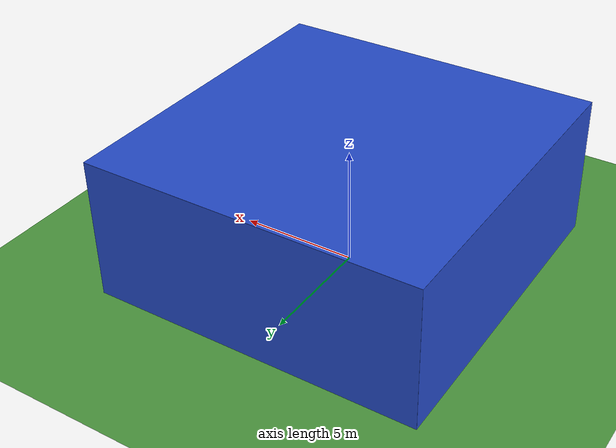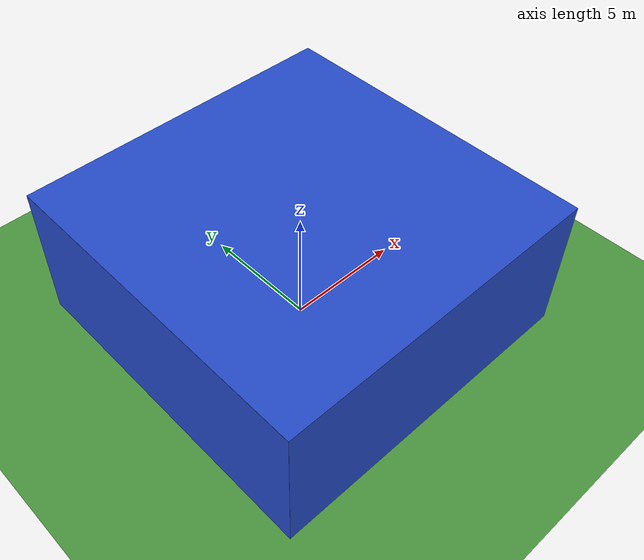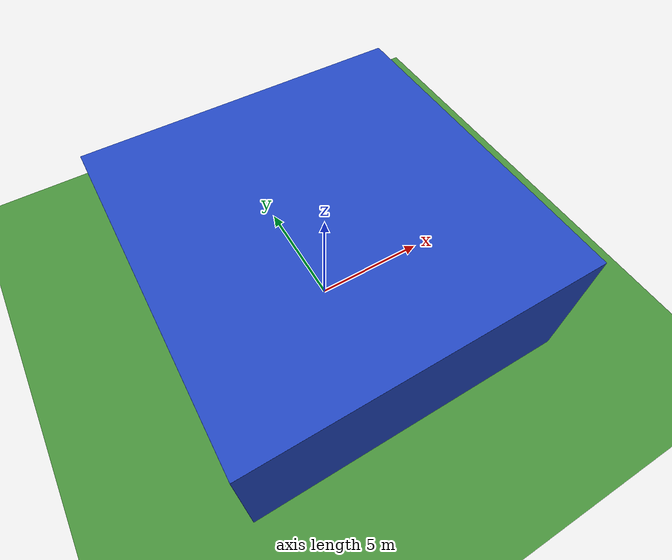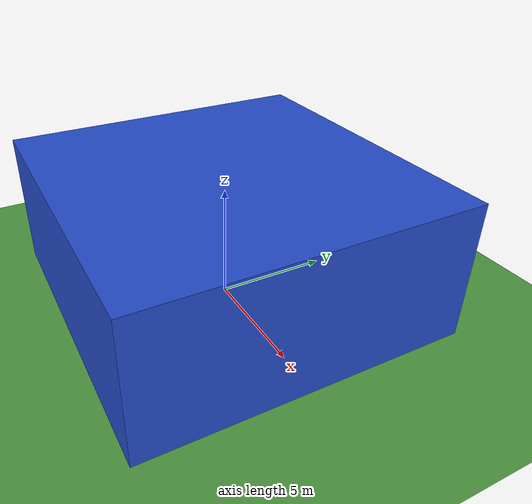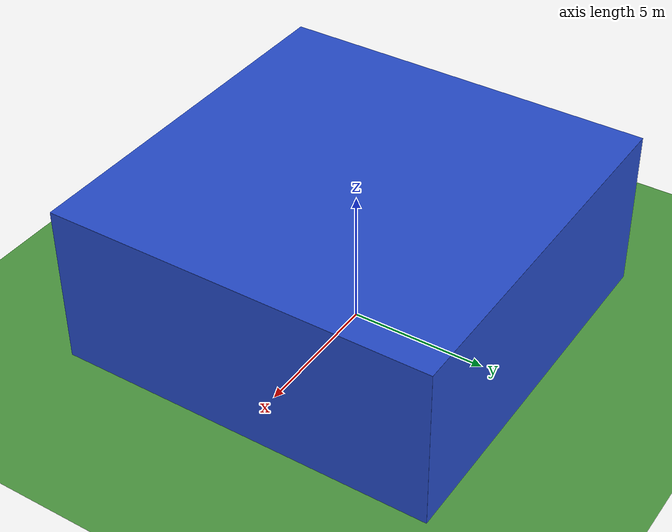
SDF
<?xml version="1.0"?>
<sdf version='1.7'>
  <world name='default'>
    <light name='sun' type='directional'>
      <cast_shadows>1</cast_shadows>
      <pose>0 0 10 0 -0 0</pose>
      <diffuse>0.5 0.5 0.5 1</diffuse>
      <specular>0.1 0.1 0.1 1</specular>
      <attenuation>
        <range>1000</range>
        <constant>0.7</constant>
        <linear>0.01</linear>
        <quadratic>0.001</quadratic>
      </attenuation>
      <direction>-0.5 0.1 -0.9</direction>
      <spot>
        <inner_angle>0</inner_angle>
        <outer_angle>0</outer_angle>
        <falloff>0</falloff>
      </spot>
    </light>
    <model name='ground_plane'>
      <static>1</static>
      <link name='link'>
        <collision name='collision'>
          <geometry>
            <plane>
              <normal>0 0 1</normal>
              <size>100 100</size>
            </plane>
          </geometry>
          <surface>
            <contact>
              <collide_bitmask>65535</collide_bitmask>
              <ode/>
            </contact>
            <friction>
              <ode>
                <mu>100</mu>
                <mu2>50</mu2>
              </ode>
              <torsional>
                <ode/>
              </torsional>
            </friction>
            <bounce/>
          </surface>
          <max_contacts>10</max_contacts>
        </collision>
        <visual name='visual'>
          <cast_shadows>0</cast_shadows>
          <geometry>
            <plane>
              <normal>0 0 1</normal>
              <size>100 100</size>
            </plane>
          </geometry>
          <material>
            <script>
              <uri>file://media/materials/scripts/gazebo.material</uri>
              <name>Gazebo/Grass</name>
            </script>
          </material>
        </visual>
        <self_collide>0</self_collide>
        <enable_wind>0</enable_wind>
        <kinematic>0</kinematic>
      </link>
    </model>
    <gravity>0 0 -9.8</gravity>
    <magnetic_field>6e-06 2.3e-05 -4.2e-05</magnetic_field>
    <atmosphere type='adiabatic'/>
    <physics type='ode'>
      <max_step_size>0.001</max_step_size>
      <real_time_factor>1</real_time_factor>
      <real_time_update_rate>1000</real_time_update_rate>
    </physics>
    <scene>
      <ambient>0.5 0.5 0.5 1</ambient>
      <sky>
        <clouds>
          <speed>12</speed>
        </clouds>
      </sky>
      <shadows>0</shadows>
      <grid>false</grid>
    </scene>
    <spherical_coordinates>
      <surface_model>EARTH_WGS84</surface_model>
      <latitude_deg>0</latitude_deg>
      <longitude_deg>0</longitude_deg>
      <elevation>0</elevation>
      <heading_deg>0</heading_deg>
    </spherical_coordinates>
    <model name='pole_nn'>
      <pose>-5 -5 2 0 0 0</pose>
      <static>1</static>
      <cast_shadows>0</cast_shadows>
      <link name='link'>
        <visual name='visual'>
          <geometry>
            <cylinder>
              <radius>0.05</radius>
              <length>4</length>
            </cylinder>
          </geometry>
          <material>
            <script>
              <name>Gazebo/Blue</name>
              <uri>file://media/materials/scripts/gazebo.material</uri>
            </script>
          </material>
        </visual>
        <self_collide>0</self_collide>
        <enable_wind>0</enable_wind>
        <kinematic>0</kinematic>
      </link>
      <link name="nn_cam_link">
        <pose>0 0 0 0 0 0.785398163397</pose>
        <visual name="visual">
          <cast_shadows>false</cast_shadows>
          <geometry>
            <box>
              <size>0.2 0.1 0.1</size>
            </box>
          </geometry>
        </visual>
        <sensor type="camera" name="nn_camera">
          <update_rate>30.0</update_rate>
          <camera name="nn_cam">
            <horizontal_fov>1.57079632679</horizontal_fov>
            <image>
              <width>640</width>
              <height>384</height>
              <format>R8G8B8</format>
            </image>
            <clip>
              <near>0.02</near>
              <far>300</far>
            </clip>
            <noise>
              <type>gaussian</type>
              <mean>0.0</mean>
              <stddev>0.007</stddev>
            </noise>
            <lens>
              <intrinsics>
                <fx>320</fx>
                <fy>320</fy>
                <cx>320.5</cx>
                <cy>192.5</cy>
              </intrinsics>
            </lens>
          </camera>
          <plugin name="camera_controller" filename="libgazebo_ros_camera.so">
            <alwaysOn>true</alwaysOn>
            <updateRate>0</updateRate>
            <cameraName>nn_cam</cameraName>
            <imageTopicName>image_raw</imageTopicName>
            <cameraInfoTopicName>nn_cam_info</cameraInfoTopicName>
            <frameName>nn_cam_link</frameName>
            <hackBaseline>0.07</hackBaseline>
            <distortionK1>0.0</distortionK1>
            <distortionK2>0.0</distortionK2>
            <distortionK3>0.0</distortionK3>
            <distortionT1>0.0</distortionT1>
            <distortionT2>0.0</distortionT2>
          </plugin>
        </sensor>
      </link>
    </model>
    <model name='pole_np'>
      <pose>-5 5 1.5 0 0 0</pose>
      <static>1</static>
      <cast_shadows>0</cast_shadows>
      <link name='link'>
        <visual name='visual'>
          <geometry>
            <cylinder>
              <radius>0.05</radius>
              <length>3</length>
            </cylinder>
          </geometry>
          <material>
            <script>
              <name>Gazebo/Blue</name>
              <uri>file://media/materials/scripts/gazebo.material</uri>
            </script>
          </material>
        </visual>
        <self_collide>0</self_collide>
        <enable_wind>0</enable_wind>
        <kinematic>0</kinematic>
      </link>
      <link name="np_cam_link">
        <pose>0 0 0 0 0 -0.785398163397</pose>
        <visual name="visual">
          <cast_shadows>false</cast_shadows>
          <geometry>
            <box>
              <size>0.2 0.1 0.1</size>
            </box>
          </geometry>
        </visual>
        <sensor type="camera" name="np_camera">
          <update_rate>30.0</update_rate>
          <camera name="np_cam">
            <horizontal_fov>1.57079632679</horizontal_fov>
            <image>
              <width>640</width>
              <height>384</height>
              <format>R8G8B8</format>
            </image>
            <clip>
              <near>0.02</near>
              <far>300</far>
            </clip>
            <noise>
              <type>gaussian</type>
              <mean>0.0</mean>
              <stddev>0.007</stddev>
            </noise>
            <lens>
              <intrinsics>
                <fx>320</fx>
                <fy>320</fy>
                <cx>320.5</cx>
                <cy>192.5</cy>
              </intrinsics>
            </lens>
          </camera>
          <plugin name="camera_controller" filename="libgazebo_ros_camera.so">
            <alwaysOn>true</alwaysOn>
            <updateRate>0</updateRate>
            <cameraName>np_cam</cameraName>
            <imageTopicName>image_raw</imageTopicName>
            <cameraInfoTopicName>np_cam_info</cameraInfoTopicName>
            <frameName>np_cam_link</frameName>
            <hackBaseline>0.07</hackBaseline>
            <distortionK1>0.0</distortionK1>
            <distortionK2>0.0</distortionK2>
            <distortionK3>0.0</distortionK3>
            <distortionT1>0.0</distortionT1>
            <distortionT2>0.0</distortionT2>
          </plugin>
        </sensor>
      </link>
    </model>
    <model name='pole_pp'>
      <pose>5 5 1.25 0 0 0</pose>
      <static>1</static>
      <cast_shadows>0</cast_shadows>
      <link name='link'>
        <visual name='visual'>
          <geometry>
            <cylinder>
              <radius>0.05</radius>
              <length>2.5</length>
            </cylinder>
          </geometry>
          <material>
            <script>
              <name>Gazebo/Blue</name>
              <uri>file://media/materials/scripts/gazebo.material</uri>
            </script>
          </material>
        </visual>
        <self_collide>0</self_collide>
        <enable_wind>0</enable_wind>
        <kinematic>0</kinematic>
      </link>
      <link name="pp_cam_link">
        <pose>0 0 0 0 0 -2.35619449019</pose>
        <visual name="visual">
          <cast_shadows>false</cast_shadows>
          <geometry>
            <box>
              <size>0.2 0.1 0.1</size>
            </box>
          </geometry>
        </visual>
        <sensor type="camera" name="pp_camera">
          <update_rate>30.0</update_rate>
          <camera name="pp_cam">
            <horizontal_fov>1.57079632679</horizontal_fov>
            <image>
              <width>640</width>
              <height>384</height>
              <format>R8G8B8</format>
            </image>
            <clip>
              <near>0.02</near>
              <far>300</far>
            </clip>
            <noise>
              <type>gaussian</type>
              <mean>0.0</mean>
              <stddev>0.007</stddev>
            </noise>
            <lens>
              <intrinsics>
                <fx>320</fx>
                <fy>320</fy>
                <cx>320.5</cx>
                <cy>192.5</cy>
              </intrinsics>
            </lens>
          </camera>
          <plugin name="camera_controller" filename="libgazebo_ros_camera.so">
            <alwaysOn>true</alwaysOn>
            <updateRate>0</updateRate>
            <cameraName>pp_cam</cameraName>
            <imageTopicName>image_raw</imageTopicName>
            <cameraInfoTopicName>pp_cam_info</cameraInfoTopicName>
            <frameName>pp_cam_link</frameName>
            <hackBaseline>0.07</hackBaseline>
            <distortionK1>0.0</distortionK1>
            <distortionK2>0.0</distortionK2>
            <distortionK3>0.0</distortionK3>
            <distortionT1>0.0</distortionT1>
            <distortionT2>0.0</distortionT2>
          </plugin>
        </sensor>
      </link>
    </model>
    <model name='pole_pn'>
      <pose>5 -5 1.75 0 0 0</pose>
      <static>1</static>
      <cast_shadows>0</cast_shadows>
      <link name='link'>
        <visual name='visual'>
          <geometry>
            <cylinder>
              <radius>0.05</radius>
              <length>3.5</length>
            </cylinder>
          </geometry>
          <material>
            <script>
              <name>Gazebo/Blue</name>
              <uri>file://media/materials/scripts/gazebo.material</uri>
            </script>
          </material>
        </visual>
        <self_collide>0</self_collide>
        <enable_wind>0</enable_wind>
        <kinematic>0</kinematic>
      </link>
      <link name="pn_cam_link">
        <pose>0 0 0 0 0 2.35619449019</pose>
        <visual name="visual">
          <cast_shadows>false</cast_shadows>
          <geometry>
            <box>
              <size>0.2 0.1 0.1</size>
            </box>
          </geometry>
        </visual>
        <sensor type="camera" name="pn_camera">
          <update_rate>30.0</update_rate>
          <camera name="pn_cam">
            <horizontal_fov>1.57079632679</horizontal_fov>
            <image>
              <width>640</width>
              <height>384</height>
              <format>R8G8B8</format>
            </image>
            <clip>
              <near>0.02</near>
              <far>300</far>
            </clip>
            <noise>
              <type>gaussian</type>
              <mean>0.0</mean>
              <stddev>0.007</stddev>
            </noise>
            <lens>
              <intrinsics>
                <fx>320</fx>
                <fy>320</fy>
                <cx>320.5</cx>
                <cy>192.5</cy>
              </intrinsics>
            </lens>
          </camera>
          <plugin name="camera_controller" filename="libgazebo_ros_camera.so">
            <alwaysOn>true</alwaysOn>
            <updateRate>0</updateRate>
            <cameraName>pn_cam</cameraName>
            <imageTopicName>image_raw</imageTopicName>
            <cameraInfoTopicName>pn_cam_info</cameraInfoTopicName>
            <frameName>pn_cam_link</frameName>
            <hackBaseline>0.07</hackBaseline>
            <distortionK1>0.0</distortionK1>
            <distortionK2>0.0</distortionK2>
            <distortionK3>0.0</distortionK3>
            <distortionT1>0.0</distortionT1>
            <distortionT2>0.0</distortionT2>
          </plugin>
        </sensor>
      </link>
    </model>
    <model name='n_plane'>
      <pose>0 7 3 1.570796 0 0</pose>
      <static>1</static>
      <link name='link'>
        <visual name='visual'>
          <cast_shadows>0</cast_shadows>
          <geometry>
            <plane>
              <normal>0 0 1</normal>
              <size>14 6</size>
            </plane>
          </geometry>
          <material>
            <script>
              <uri>file://media/materials/scripts/gazebo.material</uri>
              <name>Gazebo/BlueGlow</name>
            </script>
          </material>
        </visual>
        <self_collide>0</self_collide>
        <enable_wind>0</enable_wind>
        <kinematic>0</kinematic>
      </link>
    </model>
    <model name='s_plane'>
      <pose>0 -7 3 -1.570796 0 0</pose>
      <static>1</static>
      <link name='link'>
        <visual name='visual'>
          <cast_shadows>0</cast_shadows>
          <geometry>
            <plane>
              <normal>0 0 1</normal>
              <size>14 6</size>
            </plane>
          </geometry>
          <material>
            <script>
              <uri>file://media/materials/scripts/gazebo.material</uri>
              <name>Gazebo/BlueGlow</name>
            </script>
          </material>
        </visual>
        <self_collide>0</self_collide>
        <enable_wind>0</enable_wind>
        <kinematic>0</kinematic>
      </link>
    </model>
    <model name='w_plane'>
      <pose>-7 0 3 1.570796 0 1.570796</pose>
      <static>1</static>
      <link name='link'>
        <visual name='visual'>
          <cast_shadows>0</cast_shadows>
          <geometry>
            <plane>
              <normal>0 0 1</normal>
              <size>14 6</size>
            </plane>
          </geometry>
          <material>
            <script>
              <uri>file://media/materials/scripts/gazebo.material</uri>
              <name>Gazebo/BlueGlow</name>
            </script>
          </material>
        </visual>
        <self_collide>0</self_collide>
        <enable_wind>0</enable_wind>
        <kinematic>0</kinematic>
      </link>
    </model>
    <model name='e_plane'>
      <pose>7 0 3 -1.570796 0 1.570796</pose>
      <static>1</static>
      <link name='link'>
        <visual name='visual'>
          <cast_shadows>0</cast_shadows>
          <geometry>
            <plane>
              <normal>0 0 1</normal>
              <size>14 6</size>
            </plane>
          </geometry>
          <material>
            <script>
              <uri>file://media/materials/scripts/gazebo.material</uri>
              <name>Gazebo/BlueGlow</name>
            </script>
          </material>
        </visual>
        <self_collide>0</self_collide>
        <enable_wind>0</enable_wind>
        <kinematic>0</kinematic>
      </link>
    </model>
    <model name='up_plane'>
      <pose>0 0 6 3.141593 0 0</pose>
      <static>1</static>
      <link name='link'>
        <visual name='visual'>
          <cast_shadows>0</cast_shadows>
          <geometry>
            <plane>
              <normal>0 0 1</normal>
              <size>14 14</size>
            </plane>
          </geometry>
          <material>
            <script>
              <uri>file://media/materials/scripts/gazebo.material</uri>
              <name>Gazebo/BlueGlow</name>
            </script>
          </material>
        </visual>
        <self_collide>0</self_collide>
        <enable_wind>0</enable_wind>
        <kinematic>0</kinematic>
      </link>
    </model>
    <gui fullscreen='0'>
      <camera name='user_camera'>
        <pose>-39.9672 42.0802 28.8387 0 0.437797 -0.894993</pose>
        <view_controller>orbit</view_controller>
        <projection_type>perspective</projection_type>
      </camera>
    </gui>
  </world>
</sdf>
